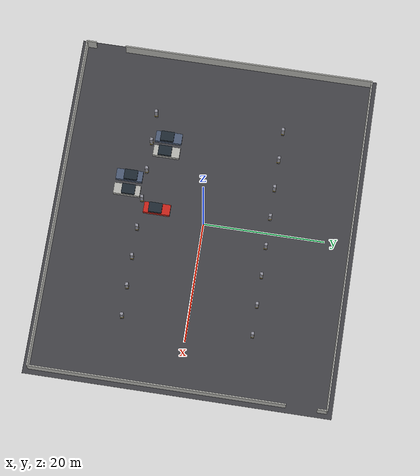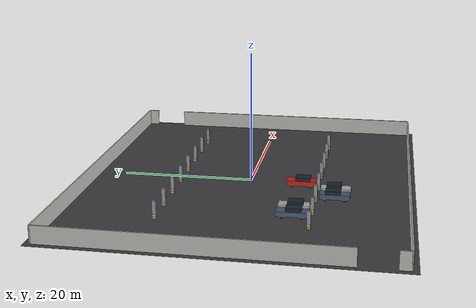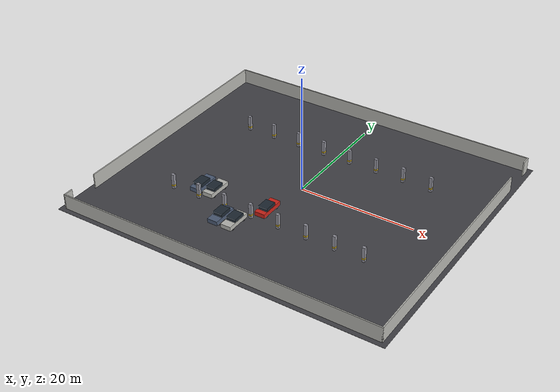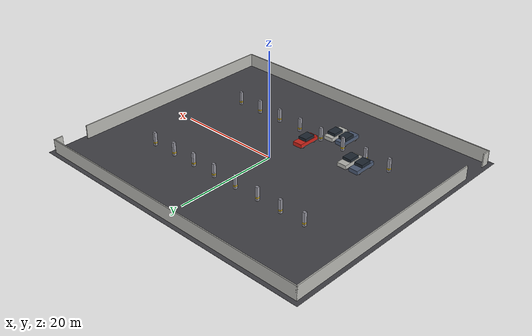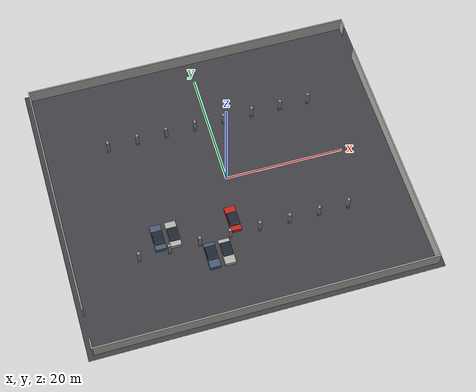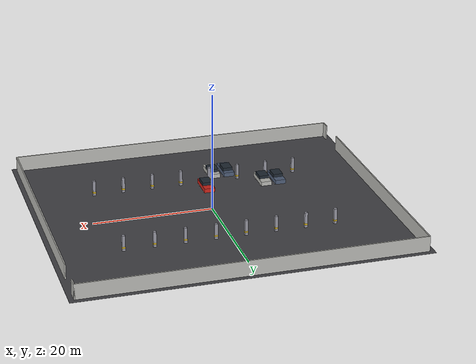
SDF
<sdf version="1.10">
 <world name="parking_lot">
  <model name="ground">
   <static>true</static>
   <link name="link">
    <collision name="c">
     <geometry><plane><normal>0 0 1</normal><size>78.0 70.1</size></plane></geometry>
     <surface><friction><ode><mu>1.0</mu><mu2>1.0</mu2></ode></friction></surface>
    </collision>
    <visual name="floor_vis">
     <pose>0.0000 0.0000 -0.0100 0 0 0.000000</pose>
     <geometry><box><size>58.0000 50.1000 0.0200</size></box></geometry>
     <material>
      <ambient>0.22 0.22 0.24 1</ambient>
      <diffuse>0.26 0.26 0.28 1</diffuse>
      <specular>0.1 0.1 0.1 1</specular>
     </material>
    </visual>
   </link>
  </model>
  <model name="perimeter_walls">
   <static>true</static>
   <link name="link">
    <collision name="wall_south_col">
     <pose>0.0000 -24.1500 1.3000 0 0 0.000000</pose>
     <geometry><box><size>56.4000 0.2000 2.6000</size></box></geometry>
    </collision>
    <visual name="wall_south_vis">
     <pose>0.0000 -24.1500 1.3000 0 0 0.000000</pose>
     <geometry><box><size>56.4000 0.2000 2.6000</size></box></geometry>
     <material>
      <ambient>0.55 0.55 0.53 1</ambient>
      <diffuse>0.72 0.72 0.70 1</diffuse>
      <specular>0.1 0.1 0.1 1</specular>
     </material>
    </visual>
    <collision name="wall_north_col">
     <pose>0.0000 24.1500 1.3000 0 0 0.000000</pose>
     <geometry><box><size>56.4000 0.2000 2.6000</size></box></geometry>
    </collision>
    <visual name="wall_north_vis">
     <pose>0.0000 24.1500 1.3000 0 0 0.000000</pose>
     <geometry><box><size>56.4000 0.2000 2.6000</size></box></geometry>
     <material>
      <ambient>0.55 0.55 0.53 1</ambient>
      <diffuse>0.72 0.72 0.70 1</diffuse>
      <specular>0.1 0.1 0.1 1</specular>
     </material>
    </visual>
    <collision name="wall_west_a_col">
     <pose>-28.1000 -23.4000 1.3000 0 0 0.000000</pose>
     <geometry><box><size>0.2000 1.7000 2.6000</size></box></geometry>
    </collision>
    <visual name="wall_west_a_vis">
     <pose>-28.1000 -23.4000 1.3000 0 0 0.000000</pose>
     <geometry><box><size>0.2000 1.7000 2.6000</size></box></geometry>
     <material>
      <ambient>0.55 0.55 0.53 1</ambient>
      <diffuse>0.72 0.72 0.70 1</diffuse>
      <specular>0.1 0.1 0.1 1</specular>
     </material>
    </visual>
    <collision name="wall_west_b_col">
     <pose>-28.1000 3.3500 1.3000 0 0 0.000000</pose>
     <geometry><box><size>0.2000 41.8000 2.6000</size></box></geometry>
    </collision>
    <visual name="wall_west_b_vis">
     <pose>-28.1000 3.3500 1.3000 0 0 0.000000</pose>
     <geometry><box><size>0.2000 41.8000 2.6000</size></box></geometry>
     <material>
      <ambient>0.55 0.55 0.53 1</ambient>
      <diffuse>0.72 0.72 0.70 1</diffuse>
      <specular>0.1 0.1 0.1 1</specular>
     </material>
    </visual>
    <collision name="wall_east_a_col">
     <pose>28.1000 -3.3500 1.3000 0 0 0.000000</pose>
     <geometry><box><size>0.2000 41.8000 2.6000</size></box></geometry>
    </collision>
    <visual name="wall_east_a_vis">
     <pose>28.1000 -3.3500 1.3000 0 0 0.000000</pose>
     <geometry><box><size>0.2000 41.8000 2.6000</size></box></geometry>
     <material>
      <ambient>0.55 0.55 0.53 1</ambient>
      <diffuse>0.72 0.72 0.70 1</diffuse>
      <specular>0.1 0.1 0.1 1</specular>
     </material>
    </visual>
    <collision name="wall_east_b_col">
     <pose>28.1000 23.4000 1.3000 0 0 0.000000</pose>
     <geometry><box><size>0.2000 1.7000 2.6000</size></box></geometry>
    </collision>
    <visual name="wall_east_b_vis">
     <pose>28.1000 23.4000 1.3000 0 0 0.000000</pose>
     <geometry><box><size>0.2000 1.7000 2.6000</size></box></geometry>
     <material>
      <ambient>0.55 0.55 0.53 1</ambient>
      <diffuse>0.72 0.72 0.70 1</diffuse>
      <specular>0.1 0.1 0.1 1</specular>
     </material>
    </visual>
   </link>
  </model>
  <model name="pillars">
   <static>true</static>
   <link name="link">
    <collision name="pillar_AB_00_col">
     <pose>-17.5000 -10.6500 1.3000 0 0 0.000000</pose>
     <geometry><box><size>0.5000 0.5000 2.6000</size></box></geometry>
    </collision>
    <visual name="pillar_AB_00_vis">
     <pose>-17.5000 -10.6500 1.3000 0 0 0.000000</pose>
     <geometry><box><size>0.5000 0.5000 2.6000</size></box></geometry>
     <material>
      <ambient>0.42 0.42 0.45 1</ambient>
      <diffuse>0.58 0.58 0.62 1</diffuse>
      <specular>0.1 0.1 0.1 1</specular>
     </material>
    </visual>
    <visual name="pillar_AB_00_band_vis">
     <pose>-17.5000 -10.6500 0.5500 0 0 0.000000</pose>
     <geometry><box><size>0.5200 0.5200 0.2500</size></box></geometry>
     <material>
      <ambient>0.72 0.58 0.06 1</ambient>
      <diffuse>0.90 0.74 0.10 1</diffuse>
      <specular>0.1 0.1 0.1 1</specular>
     </material>
    </visual>
    <collision name="pillar_AB_02_col">
     <pose>-12.5000 -10.6500 1.3000 0 0 0.000000</pose>
     <geometry><box><size>0.5000 0.5000 2.6000</size></box></geometry>
    </collision>
    <visual name="pillar_AB_02_vis">
     <pose>-12.5000 -10.6500 1.3000 0 0 0.000000</pose>
     <geometry><box><size>0.5000 0.5000 2.6000</size></box></geometry>
     <material>
      <ambient>0.42 0.42 0.45 1</ambient>
      <diffuse>0.58 0.58 0.62 1</diffuse>
      <specular>0.1 0.1 0.1 1</specular>
     </material>
    </visual>
    <visual name="pillar_AB_02_band_vis">
     <pose>-12.5000 -10.6500 0.5500 0 0 0.000000</pose>
     <geometry><box><size>0.5200 0.5200 0.2500</size></box></geometry>
     <material>
      <ambient>0.72 0.58 0.06 1</ambient>
      <diffuse>0.90 0.74 0.10 1</diffuse>
      <specular>0.1 0.1 0.1 1</specular>
     </material>
    </visual>
    <collision name="pillar_AB_04_col">
     <pose>-7.5000 -10.6500 1.3000 0 0 0.000000</pose>
     <geometry><box><size>0.5000 0.5000 2.6000</size></box></geometry>
    </collision>
    <visual name="pillar_AB_04_vis">
     <pose>-7.5000 -10.6500 1.3000 0 0 0.000000</pose>
     <geometry><box><size>0.5000 0.5000 2.6000</size></box></geometry>
     <material>
      <ambient>0.42 0.42 0.45 1</ambient>
      <diffuse>0.58 0.58 0.62 1</diffuse>
      <specular>0.1 0.1 0.1 1</specular>
     </material>
    </visual>
    <visual name="pillar_AB_04_band_vis">
     <pose>-7.5000 -10.6500 0.5500 0 0 0.000000</pose>
     <geometry><box><size>0.5200 0.5200 0.2500</size></box></geometry>
     <material>
      <ambient>0.72 0.58 0.06 1</ambient>
      <diffuse>0.90 0.74 0.10 1</diffuse>
      <specular>0.1 0.1 0.1 1</specular>
     </material>
    </visual>
    <collision name="pillar_AB_06_col">
     <pose>-2.5000 -10.6500 1.3000 0 0 0.000000</pose>
     <geometry><box><size>0.5000 0.5000 2.6000</size></box></geometry>
    </collision>
    <visual name="pillar_AB_06_vis">
     <pose>-2.5000 -10.6500 1.3000 0 0 0.000000</pose>
     <geometry><box><size>0.5000 0.5000 2.6000</size></box></geometry>
     <material>
      <ambient>0.42 0.42 0.45 1</ambient>
      <diffuse>0.58 0.58 0.62 1</diffuse>
      <specular>0.1 0.1 0.1 1</specular>
     </material>
    </visual>
    <visual name="pillar_AB_06_band_vis">
     <pose>-2.5000 -10.6500 0.5500 0 0 0.000000</pose>
     <geometry><box><size>0.5200 0.5200 0.2500</size></box></geometry>
     <material>
      <ambient>0.72 0.58 0.06 1</ambient>
      <diffuse>0.90 0.74 0.10 1</diffuse>
      <specular>0.1 0.1 0.1 1</specular>
     </material>
    </visual>
    <collision name="pillar_AB_08_col">
     <pose>2.5000 -10.6500 1.3000 0 0 0.000000</pose>
     <geometry><box><size>0.5000 0.5000 2.6000</size></box></geometry>
    </collision>
    <visual name="pillar_AB_08_vis">
     <pose>2.5000 -10.6500 1.3000 0 0 0.000000</pose>
     <geometry><box><size>0.5000 0.5000 2.6000</size></box></geometry>
     <material>
      <ambient>0.42 0.42 0.45 1</ambient>
      <diffuse>0.58 0.58 0.62 1</diffuse>
      <specular>0.1 0.1 0.1 1</specular>
     </material>
    </visual>
    <visual name="pillar_AB_08_band_vis">
     <pose>2.5000 -10.6500 0.5500 0 0 0.000000</pose>
     <geometry><box><size>0.5200 0.5200 0.2500</size></box></geometry>
     <material>
      <ambient>0.72 0.58 0.06 1</ambient>
      <diffuse>0.90 0.74 0.10 1</diffuse>
      <specular>0.1 0.1 0.1 1</specular>
     </material>
    </visual>
    <collision name="pillar_AB_10_col">
     <pose>7.5000 -10.6500 1.3000 0 0 0.000000</pose>
     <geometry><box><size>0.5000 0.5000 2.6000</size></box></geometry>
    </collision>
    <visual name="pillar_AB_10_vis">
     <pose>7.5000 -10.6500 1.3000 0 0 0.000000</pose>
     <geometry><box><size>0.5000 0.5000 2.6000</size></box></geometry>
     <material>
      <ambient>0.42 0.42 0.45 1</ambient>
      <diffuse>0.58 0.58 0.62 1</diffuse>
      <specular>0.1 0.1 0.1 1</specular>
     </material>
    </visual>
    <visual name="pillar_AB_10_band_vis">
     <pose>7.5000 -10.6500 0.5500 0 0 0.000000</pose>
     <geometry><box><size>0.5200 0.5200 0.2500</size></box></geometry>
     <material>
      <ambient>0.72 0.58 0.06 1</ambient>
      <diffuse>0.90 0.74 0.10 1</diffuse>
      <specular>0.1 0.1 0.1 1</specular>
     </material>
    </visual>
    <collision name="pillar_AB_12_col">
     <pose>12.5000 -10.6500 1.3000 0 0 0.000000</pose>
     <geometry><box><size>0.5000 0.5000 2.6000</size></box></geometry>
    </collision>
    <visual name="pillar_AB_12_vis">
     <pose>12.5000 -10.6500 1.3000 0 0 0.000000</pose>
     <geometry><box><size>0.5000 0.5000 2.6000</size></box></geometry>
     <material>
      <ambient>0.42 0.42 0.45 1</ambient>
      <diffuse>0.58 0.58 0.62 1</diffuse>
      <specular>0.1 0.1 0.1 1</specular>
     </material>
    </visual>
    <visual name="pillar_AB_12_band_vis">
     <pose>12.5000 -10.6500 0.5500 0 0 0.000000</pose>
     <geometry><box><size>0.5200 0.5200 0.2500</size></box></geometry>
     <material>
      <ambient>0.72 0.58 0.06 1</ambient>
      <diffuse>0.90 0.74 0.10 1</diffuse>
      <specular>0.1 0.1 0.1 1</specular>
     </material>
    </visual>
    <collision name="pillar_AB_14_col">
     <pose>17.5000 -10.6500 1.3000 0 0 0.000000</pose>
     <geometry><box><size>0.5000 0.5000 2.6000</size></box></geometry>
    </collision>
    <visual name="pillar_AB_14_vis">
     <pose>17.5000 -10.6500 1.3000 0 0 0.000000</pose>
     <geometry><box><size>0.5000 0.5000 2.6000</size></box></geometry>
     <material>
      <ambient>0.42 0.42 0.45 1</ambient>
      <diffuse>0.58 0.58 0.62 1</diffuse>
      <specular>0.1 0.1 0.1 1</specular>
     </material>
    </visual>
    <visual name="pillar_AB_14_band_vis">
     <pose>17.5000 -10.6500 0.5500 0 0 0.000000</pose>
     <geometry><box><size>0.5200 0.5200 0.2500</size></box></geometry>
     <material>
      <ambient>0.72 0.58 0.06 1</ambient>
      <diffuse>0.90 0.74 0.10 1</diffuse>
      <specular>0.1 0.1 0.1 1</specular>
     </material>
    </visual>
    <collision name="pillar_CD_00_col">
     <pose>-17.5000 10.6500 1.3000 0 0 0.000000</pose>
     <geometry><box><size>0.5000 0.5000 2.6000</size></box></geometry>
    </collision>
    <visual name="pillar_CD_00_vis">
     <pose>-17.5000 10.6500 1.3000 0 0 0.000000</pose>
     <geometry><box><size>0.5000 0.5000 2.6000</size></box></geometry>
     <material>
      <ambient>0.42 0.42 0.45 1</ambient>
      <diffuse>0.58 0.58 0.62 1</diffuse>
      <specular>0.1 0.1 0.1 1</specular>
     </material>
    </visual>
    <visual name="pillar_CD_00_band_vis">
     <pose>-17.5000 10.6500 0.5500 0 0 0.000000</pose>
     <geometry><box><size>0.5200 0.5200 0.2500</size></box></geometry>
     <material>
      <ambient>0.72 0.58 0.06 1</ambient>
      <diffuse>0.90 0.74 0.10 1</diffuse>
      <specular>0.1 0.1 0.1 1</specular>
     </material>
    </visual>
    <collision name="pillar_CD_02_col">
     <pose>-12.5000 10.6500 1.3000 0 0 0.000000</pose>
     <geometry><box><size>0.5000 0.5000 2.6000</size></box></geometry>
    </collision>
    <visual name="pillar_CD_02_vis">
     <pose>-12.5000 10.6500 1.3000 0 0 0.000000</pose>
     <geometry><box><size>0.5000 0.5000 2.6000</size></box></geometry>
     <material>
      <ambient>0.42 0.42 0.45 1</ambient>
      <diffuse>0.58 0.58 0.62 1</diffuse>
      <specular>0.1 0.1 0.1 1</specular>
     </material>
    </visual>
    <visual name="pillar_CD_02_band_vis">
     <pose>-12.5000 10.6500 0.5500 0 0 0.000000</pose>
     <geometry><box><size>0.5200 0.5200 0.2500</size></box></geometry>
     <material>
      <ambient>0.72 0.58 0.06 1</ambient>
      <diffuse>0.90 0.74 0.10 1</diffuse>
      <specular>0.1 0.1 0.1 1</specular>
     </material>
    </visual>
    <collision name="pillar_CD_04_col">
     <pose>-7.5000 10.6500 1.3000 0 0 0.000000</pose>
     <geometry><box><size>0.5000 0.5000 2.6000</size></box></geometry>
    </collision>
    <visual name="pillar_CD_04_vis">
     <pose>-7.5000 10.6500 1.3000 0 0 0.000000</pose>
     <geometry><box><size>0.5000 0.5000 2.6000</size></box></geometry>
     <material>
      <ambient>0.42 0.42 0.45 1</ambient>
      <diffuse>0.58 0.58 0.62 1</diffuse>
      <specular>0.1 0.1 0.1 1</specular>
     </material>
    </visual>
    <visual name="pillar_CD_04_band_vis">
     <pose>-7.5000 10.6500 0.5500 0 0 0.000000</pose>
     <geometry><box><size>0.5200 0.5200 0.2500</size></box></geometry>
     <material>
      <ambient>0.72 0.58 0.06 1</ambient>
      <diffuse>0.90 0.74 0.10 1</diffuse>
      <specular>0.1 0.1 0.1 1</specular>
     </material>
    </visual>
    <collision name="pillar_CD_06_col">
     <pose>-2.5000 10.6500 1.3000 0 0 0.000000</pose>
     <geometry><box><size>0.5000 0.5000 2.6000</size></box></geometry>
    </collision>
    <visual name="pillar_CD_06_vis">
     <pose>-2.5000 10.6500 1.3000 0 0 0.000000</pose>
     <geometry><box><size>0.5000 0.5000 2.6000</size></box></geometry>
     <material>
      <ambient>0.42 0.42 0.45 1</ambient>
      <diffuse>0.58 0.58 0.62 1</diffuse>
      <specular>0.1 0.1 0.1 1</specular>
     </material>
    </visual>
    <visual name="pillar_CD_06_band_vis">
     <pose>-2.5000 10.6500 0.5500 0 0 0.000000</pose>
     <geometry><box><size>0.5200 0.5200 0.2500</size></box></geometry>
     <material>
      <ambient>0.72 0.58 0.06 1</ambient>
      <diffuse>0.90 0.74 0.10 1</diffuse>
      <specular>0.1 0.1 0.1 1</specular>
     </material>
    </visual>
    <collision name="pillar_CD_08_col">
     <pose>2.5000 10.6500 1.3000 0 0 0.000000</pose>
     <geometry><box><size>0.5000 0.5000 2.6000</size></box></geometry>
    </collision>
    <visual name="pillar_CD_08_vis">
     <pose>2.5000 10.6500 1.3000 0 0 0.000000</pose>
     <geometry><box><size>0.5000 0.5000 2.6000</size></box></geometry>
     <material>
      <ambient>0.42 0.42 0.45 1</ambient>
      <diffuse>0.58 0.58 0.62 1</diffuse>
      <specular>0.1 0.1 0.1 1</specular>
     </material>
    </visual>
    <visual name="pillar_CD_08_band_vis">
     <pose>2.5000 10.6500 0.5500 0 0 0.000000</pose>
     <geometry><box><size>0.5200 0.5200 0.2500</size></box></geometry>
     <material>
      <ambient>0.72 0.58 0.06 1</ambient>
      <diffuse>0.90 0.74 0.10 1</diffuse>
      <specular>0.1 0.1 0.1 1</specular>
     </material>
    </visual>
    <collision name="pillar_CD_10_col">
     <pose>7.5000 10.6500 1.3000 0 0 0.000000</pose>
     <geometry><box><size>0.5000 0.5000 2.6000</size></box></geometry>
    </collision>
    <visual name="pillar_CD_10_vis">
     <pose>7.5000 10.6500 1.3000 0 0 0.000000</pose>
     <geometry><box><size>0.5000 0.5000 2.6000</size></box></geometry>
     <material>
      <ambient>0.42 0.42 0.45 1</ambient>
      <diffuse>0.58 0.58 0.62 1</diffuse>
      <specular>0.1 0.1 0.1 1</specular>
     </material>
    </visual>
    <visual name="pillar_CD_10_band_vis">
     <pose>7.5000 10.6500 0.5500 0 0 0.000000</pose>
     <geometry><box><size>0.5200 0.5200 0.2500</size></box></geometry>
     <material>
      <ambient>0.72 0.58 0.06 1</ambient>
      <diffuse>0.90 0.74 0.10 1</diffuse>
      <specular>0.1 0.1 0.1 1</specular>
     </material>
    </visual>
    <collision name="pillar_CD_12_col">
     <pose>12.5000 10.6500 1.3000 0 0 0.000000</pose>
     <geometry><box><size>0.5000 0.5000 2.6000</size></box></geometry>
    </collision>
    <visual name="pillar_CD_12_vis">
     <pose>12.5000 10.6500 1.3000 0 0 0.000000</pose>
     <geometry><box><size>0.5000 0.5000 2.6000</size></box></geometry>
     <material>
      <ambient>0.42 0.42 0.45 1</ambient>
      <diffuse>0.58 0.58 0.62 1</diffuse>
      <specular>0.1 0.1 0.1 1</specular>
     </material>
    </visual>
    <visual name="pillar_CD_12_band_vis">
     <pose>12.5000 10.6500 0.5500 0 0 0.000000</pose>
     <geometry><box><size>0.5200 0.5200 0.2500</size></box></geometry>
     <material>
      <ambient>0.72 0.58 0.06 1</ambient>
      <diffuse>0.90 0.74 0.10 1</diffuse>
      <specular>0.1 0.1 0.1 1</specular>
     </material>
    </visual>
    <collision name="pillar_CD_14_col">
     <pose>17.5000 10.6500 1.3000 0 0 0.000000</pose>
     <geometry><box><size>0.5000 0.5000 2.6000</size></box></geometry>
    </collision>
    <visual name="pillar_CD_14_vis">
     <pose>17.5000 10.6500 1.3000 0 0 0.000000</pose>
     <geometry><box><size>0.5000 0.5000 2.6000</size></box></geometry>
     <material>
      <ambient>0.42 0.42 0.45 1</ambient>
      <diffuse>0.58 0.58 0.62 1</diffuse>
      <specular>0.1 0.1 0.1 1</specular>
     </material>
    </visual>
    <visual name="pillar_CD_14_band_vis">
     <pose>17.5000 10.6500 0.5500 0 0 0.000000</pose>
     <geometry><box><size>0.5200 0.5200 0.2500</size></box></geometry>
     <material>
      <ambient>0.72 0.58 0.06 1</ambient>
      <diffuse>0.90 0.74 0.10 1</diffuse>
      <specular>0.1 0.1 0.1 1</specular>
     </material>
    </visual>
   </link>
  </model>
  <model name="parked_car_A05">
   <static>true</static>
   <pose>-6.2500 -13.3500 0 0 0 -1.570796</pose>
   <link name="link">
    <collision name="body_col">
     <pose>0.0000 0.0000 0.6300 0 0 0.000000</pose>
     <geometry><box><size>4.4000 1.8000 0.7200</size></box></geometry>
    </collision>
    <visual name="body_vis">
     <pose>0.0000 0.0000 0.6300 0 0 0.000000</pose>
     <geometry><box><size>4.4000 1.8000 0.7200</size></box></geometry>
     <material>
      <ambient>0.10 0.12 0.16 1</ambient>
      <diffuse>0.30 0.36 0.46 1</diffuse>
      <specular>0.1 0.1 0.1 1</specular>
     </material>
    </visual>
    <collision name="cabin_col">
     <pose>-0.2500 0.0000 1.2500 0 0 0.000000</pose>
     <geometry><box><size>2.2000 1.6560 0.5200</size></box></geometry>
    </collision>
    <visual name="cabin_vis">
     <pose>-0.2500 0.0000 1.2500 0 0 0.000000</pose>
     <geometry><box><size>2.2000 1.6560 0.5200</size></box></geometry>
     <material>
      <ambient>0.06 0.08 0.10 1</ambient>
      <diffuse>0.12 0.16 0.20 1</diffuse>
      <specular>0.1 0.1 0.1 1</specular>
     </material>
    </visual>
    <collision name="w_fl_col">
     <pose>1.4080 0.7560 0.3300 1.5708 0 0</pose>
     <geometry><cylinder><radius>0.3300</radius><length>0.2200</length></cylinder></geometry>
    </collision>
    <visual name="w_fl_vis">
     <pose>1.4080 0.7560 0.3300 1.5708 0 0</pose>
     <geometry><cylinder><radius>0.3300</radius><length>0.2200</length></cylinder></geometry>
     <material>
      <ambient>0.03 0.03 0.03 1</ambient>
      <diffuse>0.08 0.08 0.08 1</diffuse>
      <specular>0.1 0.1 0.1 1</specular>
     </material>
    </visual>
    <collision name="w_fr_col">
     <pose>1.4080 -0.7560 0.3300 1.5708 0 0</pose>
     <geometry><cylinder><radius>0.3300</radius><length>0.2200</length></cylinder></geometry>
    </collision>
    <visual name="w_fr_vis">
     <pose>1.4080 -0.7560 0.3300 1.5708 0 0</pose>
     <geometry><cylinder><radius>0.3300</radius><length>0.2200</length></cylinder></geometry>
     <material>
      <ambient>0.03 0.03 0.03 1</ambient>
      <diffuse>0.08 0.08 0.08 1</diffuse>
      <specular>0.1 0.1 0.1 1</specular>
     </material>
    </visual>
    <collision name="w_rl_col">
     <pose>-1.4080 0.7560 0.3300 1.5708 0 0</pose>
     <geometry><cylinder><radius>0.3300</radius><length>0.2200</length></cylinder></geometry>
    </collision>
    <visual name="w_rl_vis">
     <pose>-1.4080 0.7560 0.3300 1.5708 0 0</pose>
     <geometry><cylinder><radius>0.3300</radius><length>0.2200</length></cylinder></geometry>
     <material>
      <ambient>0.03 0.03 0.03 1</ambient>
      <diffuse>0.08 0.08 0.08 1</diffuse>
      <specular>0.1 0.1 0.1 1</specular>
     </material>
    </visual>
    <collision name="w_rr_col">
     <pose>-1.4080 -0.7560 0.3300 1.5708 0 0</pose>
     <geometry><cylinder><radius>0.3300</radius><length>0.2200</length></cylinder></geometry>
    </collision>
    <visual name="w_rr_vis">
     <pose>-1.4080 -0.7560 0.3300 1.5708 0 0</pose>
     <geometry><cylinder><radius>0.3300</radius><length>0.2200</length></cylinder></geometry>
     <material>
      <ambient>0.03 0.03 0.03 1</ambient>
      <diffuse>0.08 0.08 0.08 1</diffuse>
      <specular>0.1 0.1 0.1 1</specular>
     </material>
    </visual>
   </link>
  </model>
  <model name="parked_car_A06">
   <static>true</static>
   <pose>-3.7500 -13.3500 0 0 0 -1.570796</pose>
   <link name="link">
    <collision name="body_col">
     <pose>0.0000 0.0000 0.6300 0 0 0.000000</pose>
     <geometry><box><size>4.4000 1.8000 0.7200</size></box></geometry>
    </collision>
    <visual name="body_vis">
     <pose>0.0000 0.0000 0.6300 0 0 0.000000</pose>
     <geometry><box><size>4.4000 1.8000 0.7200</size></box></geometry>
     <material>
      <ambient>0.55 0.55 0.53 1</ambient>
      <diffuse>0.72 0.72 0.70 1</diffuse>
      <specular>0.1 0.1 0.1 1</specular>
     </material>
    </visual>
    <collision name="cabin_col">
     <pose>-0.2500 0.0000 1.2500 0 0 0.000000</pose>
     <geometry><box><size>2.2000 1.6560 0.5200</size></box></geometry>
    </collision>
    <visual name="cabin_vis">
     <pose>-0.2500 0.0000 1.2500 0 0 0.000000</pose>
     <geometry><box><size>2.2000 1.6560 0.5200</size></box></geometry>
     <material>
      <ambient>0.06 0.08 0.10 1</ambient>
      <diffuse>0.12 0.16 0.20 1</diffuse>
      <specular>0.1 0.1 0.1 1</specular>
     </material>
    </visual>
    <collision name="w_fl_col">
     <pose>1.4080 0.7560 0.3300 1.5708 0 0</pose>
     <geometry><cylinder><radius>0.3300</radius><length>0.2200</length></cylinder></geometry>
    </collision>
    <visual name="w_fl_vis">
     <pose>1.4080 0.7560 0.3300 1.5708 0 0</pose>
     <geometry><cylinder><radius>0.3300</radius><length>0.2200</length></cylinder></geometry>
     <material>
      <ambient>0.03 0.03 0.03 1</ambient>
      <diffuse>0.08 0.08 0.08 1</diffuse>
      <specular>0.1 0.1 0.1 1</specular>
     </material>
    </visual>
    <collision name="w_fr_col">
     <pose>1.4080 -0.7560 0.3300 1.5708 0 0</pose>
     <geometry><cylinder><radius>0.3300</radius><length>0.2200</length></cylinder></geometry>
    </collision>
    <visual name="w_fr_vis">
     <pose>1.4080 -0.7560 0.3300 1.5708 0 0</pose>
     <geometry><cylinder><radius>0.3300</radius><length>0.2200</length></cylinder></geometry>
     <material>
      <ambient>0.03 0.03 0.03 1</ambient>
      <diffuse>0.08 0.08 0.08 1</diffuse>
      <specular>0.1 0.1 0.1 1</specular>
     </material>
    </visual>
    <collision name="w_rl_col">
     <pose>-1.4080 0.7560 0.3300 1.5708 0 0</pose>
     <geometry><cylinder><radius>0.3300</radius><length>0.2200</length></cylinder></geometry>
    </collision>
    <visual name="w_rl_vis">
     <pose>-1.4080 0.7560 0.3300 1.5708 0 0</pose>
     <geometry><cylinder><radius>0.3300</radius><length>0.2200</length></cylinder></geometry>
     <material>
      <ambient>0.03 0.03 0.03 1</ambient>
      <diffuse>0.08 0.08 0.08 1</diffuse>
      <specular>0.1 0.1 0.1 1</specular>
     </material>
    </visual>
    <collision name="w_rr_col">
     <pose>-1.4080 -0.7560 0.3300 1.5708 0 0</pose>
     <geometry><cylinder><radius>0.3300</radius><length>0.2200</length></cylinder></geometry>
    </collision>
    <visual name="w_rr_vis">
     <pose>-1.4080 -0.7560 0.3300 1.5708 0 0</pose>
     <geometry><cylinder><radius>0.3300</radius><length>0.2200</length></cylinder></geometry>
     <material>
      <ambient>0.03 0.03 0.03 1</ambient>
      <diffuse>0.08 0.08 0.08 1</diffuse>
      <specular>0.1 0.1 0.1 1</specular>
     </material>
    </visual>
   </link>
  </model>
  <model name="parked_car_B02">
   <static>true</static>
   <pose>-13.7500 -7.9500 0 0 0 1.570796</pose>
   <link name="link">
    <collision name="body_col">
     <pose>0.0000 0.0000 0.6300 0 0 0.000000</pose>
     <geometry><box><size>4.4000 1.8000 0.7200</size></box></geometry>
    </collision>
    <visual name="body_vis">
     <pose>0.0000 0.0000 0.6300 0 0 0.000000</pose>
     <geometry><box><size>4.4000 1.8000 0.7200</size></box></geometry>
     <material>
      <ambient>0.10 0.12 0.16 1</ambient>
      <diffuse>0.30 0.36 0.46 1</diffuse>
      <specular>0.1 0.1 0.1 1</specular>
     </material>
    </visual>
    <collision name="cabin_col">
     <pose>-0.2500 0.0000 1.2500 0 0 0.000000</pose>
     <geometry><box><size>2.2000 1.6560 0.5200</size></box></geometry>
    </collision>
    <visual name="cabin_vis">
     <pose>-0.2500 0.0000 1.2500 0 0 0.000000</pose>
     <geometry><box><size>2.2000 1.6560 0.5200</size></box></geometry>
     <material>
      <ambient>0.06 0.08 0.10 1</ambient>
      <diffuse>0.12 0.16 0.20 1</diffuse>
      <specular>0.1 0.1 0.1 1</specular>
     </material>
    </visual>
    <collision name="w_fl_col">
     <pose>1.4080 0.7560 0.3300 1.5708 0 0</pose>
     <geometry><cylinder><radius>0.3300</radius><length>0.2200</length></cylinder></geometry>
    </collision>
    <visual name="w_fl_vis">
     <pose>1.4080 0.7560 0.3300 1.5708 0 0</pose>
     <geometry><cylinder><radius>0.3300</radius><length>0.2200</length></cylinder></geometry>
     <material>
      <ambient>0.03 0.03 0.03 1</ambient>
      <diffuse>0.08 0.08 0.08 1</diffuse>
      <specular>0.1 0.1 0.1 1</specular>
     </material>
    </visual>
    <collision name="w_fr_col">
     <pose>1.4080 -0.7560 0.3300 1.5708 0 0</pose>
     <geometry><cylinder><radius>0.3300</radius><length>0.2200</length></cylinder></geometry>
    </collision>
    <visual name="w_fr_vis">
     <pose>1.4080 -0.7560 0.3300 1.5708 0 0</pose>
     <geometry><cylinder><radius>0.3300</radius><length>0.2200</length></cylinder></geometry>
     <material>
      <ambient>0.03 0.03 0.03 1</ambient>
      <diffuse>0.08 0.08 0.08 1</diffuse>
      <specular>0.1 0.1 0.1 1</specular>
     </material>
    </visual>
    <collision name="w_rl_col">
     <pose>-1.4080 0.7560 0.3300 1.5708 0 0</pose>
     <geometry><cylinder><radius>0.3300</radius><length>0.2200</length></cylinder></geometry>
    </collision>
    <visual name="w_rl_vis">
     <pose>-1.4080 0.7560 0.3300 1.5708 0 0</pose>
     <geometry><cylinder><radius>0.3300</radius><length>0.2200</length></cylinder></geometry>
     <material>
      <ambient>0.03 0.03 0.03 1</ambient>
      <diffuse>0.08 0.08 0.08 1</diffuse>
      <specular>0.1 0.1 0.1 1</specular>
     </material>
    </visual>
    <collision name="w_rr_col">
     <pose>-1.4080 -0.7560 0.3300 1.5708 0 0</pose>
     <geometry><cylinder><radius>0.3300</radius><length>0.2200</length></cylinder></geometry>
    </collision>
    <visual name="w_rr_vis">
     <pose>-1.4080 -0.7560 0.3300 1.5708 0 0</pose>
     <geometry><cylinder><radius>0.3300</radius><length>0.2200</length></cylinder></geometry>
     <material>
      <ambient>0.03 0.03 0.03 1</ambient>
      <diffuse>0.08 0.08 0.08 1</diffuse>
      <specular>0.1 0.1 0.1 1</specular>
     </material>
    </visual>
   </link>
  </model>
  <model name="parked_car_B03">
   <static>true</static>
   <pose>-11.2500 -7.9500 0 0 0 1.570796</pose>
   <link name="link">
    <collision name="body_col">
     <pose>0.0000 0.0000 0.6300 0 0 0.000000</pose>
     <geometry><box><size>4.4000 1.8000 0.7200</size></box></geometry>
    </collision>
    <visual name="body_vis">
     <pose>0.0000 0.0000 0.6300 0 0 0.000000</pose>
     <geometry><box><size>4.4000 1.8000 0.7200</size></box></geometry>
     <material>
      <ambient>0.55 0.55 0.53 1</ambient>
      <diffuse>0.72 0.72 0.70 1</diffuse>
      <specular>0.1 0.1 0.1 1</specular>
     </material>
    </visual>
    <collision name="cabin_col">
     <pose>-0.2500 0.0000 1.2500 0 0 0.000000</pose>
     <geometry><box><size>2.2000 1.6560 0.5200</size></box></geometry>
    </collision>
    <visual name="cabin_vis">
     <pose>-0.2500 0.0000 1.2500 0 0 0.000000</pose>
     <geometry><box><size>2.2000 1.6560 0.5200</size></box></geometry>
     <material>
      <ambient>0.06 0.08 0.10 1</ambient>
      <diffuse>0.12 0.16 0.20 1</diffuse>
      <specular>0.1 0.1 0.1 1</specular>
     </material>
    </visual>
    <collision name="w_fl_col">
     <pose>1.4080 0.7560 0.3300 1.5708 0 0</pose>
     <geometry><cylinder><radius>0.3300</radius><length>0.2200</length></cylinder></geometry>
    </collision>
    <visual name="w_fl_vis">
     <pose>1.4080 0.7560 0.3300 1.5708 0 0</pose>
     <geometry><cylinder><radius>0.3300</radius><length>0.2200</length></cylinder></geometry>
     <material>
      <ambient>0.03 0.03 0.03 1</ambient>
      <diffuse>0.08 0.08 0.08 1</diffuse>
      <specular>0.1 0.1 0.1 1</specular>
     </material>
    </visual>
    <collision name="w_fr_col">
     <pose>1.4080 -0.7560 0.3300 1.5708 0 0</pose>
     <geometry><cylinder><radius>0.3300</radius><length>0.2200</length></cylinder></geometry>
    </collision>
    <visual name="w_fr_vis">
     <pose>1.4080 -0.7560 0.3300 1.5708 0 0</pose>
     <geometry><cylinder><radius>0.3300</radius><length>0.2200</length></cylinder></geometry>
     <material>
      <ambient>0.03 0.03 0.03 1</ambient>
      <diffuse>0.08 0.08 0.08 1</diffuse>
      <specular>0.1 0.1 0.1 1</specular>
     </material>
    </visual>
    <collision name="w_rl_col">
     <pose>-1.4080 0.7560 0.3300 1.5708 0 0</pose>
     <geometry><cylinder><radius>0.3300</radius><length>0.2200</length></cylinder></geometry>
    </collision>
    <visual name="w_rl_vis">
     <pose>-1.4080 0.7560 0.3300 1.5708 0 0</pose>
     <geometry><cylinder><radius>0.3300</radius><length>0.2200</length></cylinder></geometry>
     <material>
      <ambient>0.03 0.03 0.03 1</ambient>
      <diffuse>0.08 0.08 0.08 1</diffuse>
      <specular>0.1 0.1 0.1 1</specular>
     </material>
    </visual>
    <collision name="w_rr_col">
     <pose>-1.4080 -0.7560 0.3300 1.5708 0 0</pose>
     <geometry><cylinder><radius>0.3300</radius><length>0.2200</length></cylinder></geometry>
    </collision>
    <visual name="w_rr_vis">
     <pose>-1.4080 -0.7560 0.3300 1.5708 0 0</pose>
     <geometry><cylinder><radius>0.3300</radius><length>0.2200</length></cylinder></geometry>
     <material>
      <ambient>0.03 0.03 0.03 1</ambient>
      <diffuse>0.08 0.08 0.08 1</diffuse>
      <specular>0.1 0.1 0.1 1</specular>
     </material>
    </visual>
   </link>
  </model>
  <model name="parked_car_B07">
   <static>true</static>
   <pose>-1.2500 -7.9500 0 0 0 1.570796</pose>
   <link name="link">
    <collision name="body_col">
     <pose>0.0000 0.0000 0.6300 0 0 0.000000</pose>
     <geometry><box><size>4.4000 1.8000 0.7200</size></box></geometry>
    </collision>
    <visual name="body_vis">
     <pose>0.0000 0.0000 0.6300 0 0 0.000000</pose>
     <geometry><box><size>4.4000 1.8000 0.7200</size></box></geometry>
     <material>
      <ambient>0.55 0.08 0.06 1</ambient>
      <diffuse>0.80 0.14 0.10 1</diffuse>
      <specular>0.1 0.1 0.1 1</specular>
     </material>
    </visual>
    <collision name="cabin_col">
     <pose>-0.2500 0.0000 1.2500 0 0 0.000000</pose>
     <geometry><box><size>2.2000 1.6560 0.5200</size></box></geometry>
    </collision>
    <visual name="cabin_vis">
     <pose>-0.2500 0.0000 1.2500 0 0 0.000000</pose>
     <geometry><box><size>2.2000 1.6560 0.5200</size></box></geometry>
     <material>
      <ambient>0.06 0.08 0.10 1</ambient>
      <diffuse>0.12 0.16 0.20 1</diffuse>
      <specular>0.1 0.1 0.1 1</specular>
     </material>
    </visual>
    <collision name="w_fl_col">
     <pose>1.4080 0.7560 0.3300 1.5708 0 0</pose>
     <geometry><cylinder><radius>0.3300</radius><length>0.2200</length></cylinder></geometry>
    </collision>
    <visual name="w_fl_vis">
     <pose>1.4080 0.7560 0.3300 1.5708 0 0</pose>
     <geometry><cylinder><radius>0.3300</radius><length>0.2200</length></cylinder></geometry>
     <material>
      <ambient>0.03 0.03 0.03 1</ambient>
      <diffuse>0.08 0.08 0.08 1</diffuse>
      <specular>0.1 0.1 0.1 1</specular>
     </material>
    </visual>
    <collision name="w_fr_col">
     <pose>1.4080 -0.7560 0.3300 1.5708 0 0</pose>
     <geometry><cylinder><radius>0.3300</radius><length>0.2200</length></cylinder></geometry>
    </collision>
    <visual name="w_fr_vis">
     <pose>1.4080 -0.7560 0.3300 1.5708 0 0</pose>
     <geometry><cylinder><radius>0.3300</radius><length>0.2200</length></cylinder></geometry>
     <material>
      <ambient>0.03 0.03 0.03 1</ambient>
      <diffuse>0.08 0.08 0.08 1</diffuse>
      <specular>0.1 0.1 0.1 1</specular>
     </material>
    </visual>
    <collision name="w_rl_col">
     <pose>-1.4080 0.7560 0.3300 1.5708 0 0</pose>
     <geometry><cylinder><radius>0.3300</radius><length>0.2200</length></cylinder></geometry>
    </collision>
    <visual name="w_rl_vis">
     <pose>-1.4080 0.7560 0.3300 1.5708 0 0</pose>
     <geometry><cylinder><radius>0.3300</radius><length>0.2200</length></cylinder></geometry>
     <material>
      <ambient>0.03 0.03 0.03 1</ambient>
      <diffuse>0.08 0.08 0.08 1</diffuse>
      <specular>0.1 0.1 0.1 1</specular>
     </material>
    </visual>
    <collision name="w_rr_col">
     <pose>-1.4080 -0.7560 0.3300 1.5708 0 0</pose>
     <geometry><cylinder><radius>0.3300</radius><length>0.2200</length></cylinder></geometry>
    </collision>
    <visual name="w_rr_vis">
     <pose>-1.4080 -0.7560 0.3300 1.5708 0 0</pose>
     <geometry><cylinder><radius>0.3300</radius><length>0.2200</length></cylinder></geometry>
     <material>
      <ambient>0.03 0.03 0.03 1</ambient>
      <diffuse>0.08 0.08 0.08 1</diffuse>
      <specular>0.1 0.1 0.1 1</specular>
     </material>
    </visual>
   </link>
  </model>
 </world>
</sdf>
